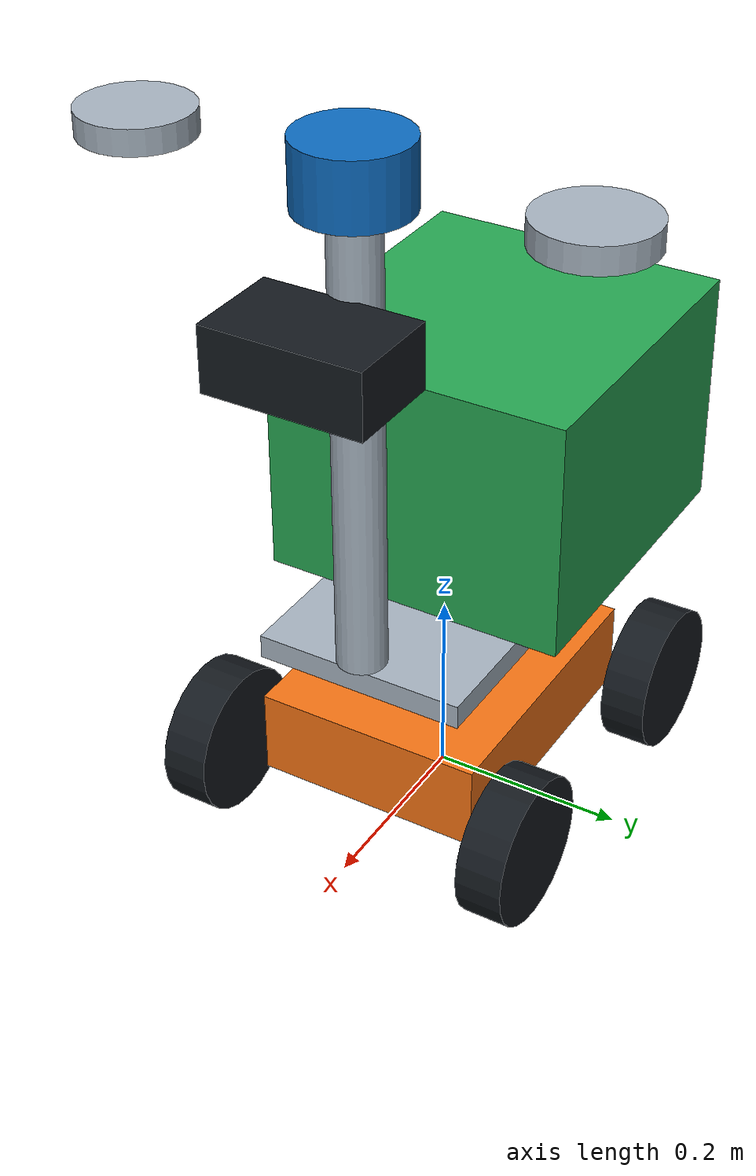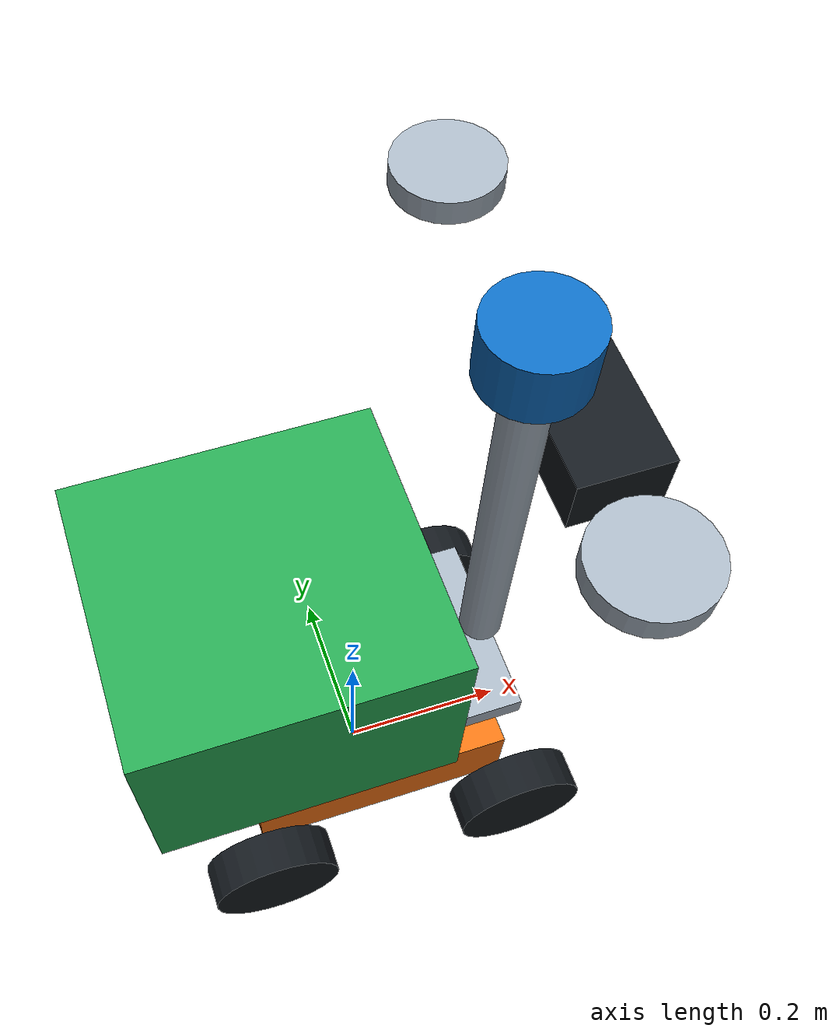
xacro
<?xml version="1.0"?>
<robot xmlns:xacro="http://www.ros.org/wiki/xacro" name="spore_patrol_robot">
  <!--
    WHEELTEC high-configuration pendulum-suspension chassis.
    Dimensions are from docs/小车相关参数/小车二维模型图纸.jpg.
    The payload and sensor mounting positions remain provisional.
  -->
  <xacro:property name="half_track" value="0.1678"/>
  <xacro:property name="half_wheelbase" value="0.15635"/>
  <xacro:property name="wheel_radius" value="0.076"/>
  <xacro:property name="wheel_width" value="0.048"/>
  <xacro:property name="chassis_length" value="0.3127"/>
  <xacro:property name="chassis_width" value="0.238"/>
  <xacro:property name="chassis_height" value="0.09"/>
  <xacro:property name="chassis_z" value="0.096"/>

  <material name="orange">
    <color rgba="0.96 0.45 0.08 1.0"/>
  </material>
  <material name="dark">
    <color rgba="0.08 0.10 0.12 1.0"/>
  </material>
  <material name="silver">
    <color rgba="0.65 0.70 0.75 1.0"/>
  </material>
  <material name="blue">
    <color rgba="0.05 0.42 0.75 1.0"/>
  </material>
  <material name="green">
    <color rgba="0.15 0.65 0.32 1.0"/>
  </material>

  <link name="base_footprint"/>

  <joint name="base_footprint_joint" type="fixed">
    <parent link="base_footprint"/>
    <child link="base_link"/>
    <origin xyz="0 0 ${chassis_z}" rpy="0 0 0"/>
  </joint>

  <link name="base_link">
    <inertial>
      <origin xyz="0 0 0"/>
      <mass value="7.6"/>
      <inertia ixx="0.12" ixy="0" ixz="0" iyy="0.17" iyz="0" izz="0.23"/>
    </inertial>
    <visual>
      <geometry>
        <box size="${chassis_length} ${chassis_width} ${chassis_height}"/>
      </geometry>
      <material name="orange"/>
    </visual>
    <collision>
      <geometry>
        <box size="${chassis_length} ${chassis_width} ${chassis_height}"/>
      </geometry>
    </collision>
  </link>

  <joint name="imu_joint" type="fixed">
    <parent link="base_link"/>
    <child link="imu_link"/>
    <origin xyz="0 0 0" rpy="0 0 0"/>
  </joint>
  <link name="imu_link"/>

  <xacro:macro name="fixed_wheel" params="name x y">
    <joint name="${name}_joint" type="fixed">
      <parent link="base_footprint"/>
      <child link="${name}_link"/>
      <origin xyz="${x} ${y} ${wheel_radius}" rpy="0 0 0"/>
    </joint>
    <link name="${name}_link">
      <visual>
        <origin rpy="${pi/2} 0 0"/>
        <geometry>
          <cylinder radius="${wheel_radius}" length="${wheel_width}"/>
        </geometry>
        <material name="dark"/>
      </visual>
      <collision>
        <origin rpy="${pi/2} 0 0"/>
        <geometry>
          <cylinder radius="${wheel_radius}" length="${wheel_width}"/>
        </geometry>
      </collision>
    </link>
  </xacro:macro>

  <xacro:fixed_wheel name="front_left_wheel" x="${half_wheelbase}" y="${half_track}"/>
  <xacro:fixed_wheel name="front_right_wheel" x="${half_wheelbase}" y="${-half_track}"/>
  <xacro:fixed_wheel name="rear_left_wheel" x="${-half_wheelbase}" y="${half_track}"/>
  <xacro:fixed_wheel name="rear_right_wheel" x="${-half_wheelbase}" y="${-half_track}"/>

  <joint name="sensor_deck_joint" type="fixed">
    <parent link="base_link"/>
    <child link="sensor_deck"/>
    <origin xyz="0 0 0.12"/>
  </joint>
  <link name="sensor_deck">
    <visual>
      <geometry>
        <box size="0.34 0.22 0.025"/>
      </geometry>
      <material name="silver"/>
    </visual>
  </link>

  <joint name="payload_joint" type="fixed">
    <parent link="sensor_deck"/>
    <child link="payload_link"/>
    <origin xyz="-0.10 0 0.15"/>
  </joint>
  <link name="payload_link">
    <visual>
      <geometry>
        <box size="0.34 0.32 0.25"/>
      </geometry>
      <material name="green"/>
    </visual>
  </link>

  <joint name="mast_joint" type="fixed">
    <parent link="sensor_deck"/>
    <child link="mast_link"/>
    <origin xyz="0.16 0 0.25"/>
  </joint>
  <link name="mast_link">
    <visual>
      <geometry>
        <cylinder radius="0.025" length="0.46"/>
      </geometry>
      <material name="silver"/>
    </visual>
  </link>

  <joint name="laser_joint" type="fixed">
    <parent link="mast_link"/>
    <child link="laser_link"/>
    <origin xyz="0 0 0.27"/>
  </joint>
  <link name="laser_link">
    <visual>
      <geometry>
        <cylinder radius="0.055" length="0.065"/>
      </geometry>
      <material name="blue"/>
    </visual>
  </link>

  <joint name="camera_joint" type="fixed">
    <parent link="mast_link"/>
    <child link="camera_link"/>
    <origin xyz="0.07 0 0.13"/>
  </joint>
  <link name="camera_link">
    <visual>
      <geometry>
        <box size="0.10 0.16 0.065"/>
      </geometry>
      <material name="dark"/>
    </visual>
  </link>

  <joint name="gnss_left_joint" type="fixed">
    <parent link="mast_link"/>
    <child link="gnss_left_link"/>
    <origin xyz="0 0.22 0.27"/>
  </joint>
  <link name="gnss_left_link">
    <visual>
      <geometry>
        <cylinder radius="0.055" length="0.025"/>
      </geometry>
      <material name="silver"/>
    </visual>
  </link>

  <joint name="gnss_right_joint" type="fixed">
    <parent link="mast_link"/>
    <child link="gnss_right_link"/>
    <origin xyz="0 -0.22 0.27"/>
  </joint>
  <link name="gnss_right_link">
    <visual>
      <geometry>
        <cylinder radius="0.055" length="0.025"/>
      </geometry>
      <material name="silver"/>
    </visual>
  </link>

  <gazebo reference="base_link">
    <material>Gazebo/Orange</material>
  </gazebo>
  <gazebo reference="sensor_deck">
    <material>Gazebo/Grey</material>
  </gazebo>
  <gazebo reference="payload_link">
    <material>Gazebo/Green</material>
  </gazebo>
  <gazebo reference="laser_link">
    <material>Gazebo/Blue</material>
    <sensor name="lidar" type="ray">
      <always_on>true</always_on>
      <visualize>false</visualize>
      <update_rate>10</update_rate>
      <ray>
        <scan>
          <horizontal>
            <samples>720</samples>
            <resolution>1</resolution>
            <min_angle>-2.35619</min_angle>
            <max_angle>2.35619</max_angle>
          </horizontal>
        </scan>
        <range>
          <min>0.10</min>
          <max>20.0</max>
          <resolution>0.01</resolution>
        </range>
        <noise>
          <type>gaussian</type>
          <mean>0.0</mean>
          <stddev>0.01</stddev>
        </noise>
      </ray>
      <plugin name="lidar_ros" filename="libgazebo_ros_ray_sensor.so">
        <ros>
          <remapping>~/out:=scan</remapping>
        </ros>
        <output_type>sensor_msgs/LaserScan</output_type>
        <frame_name>laser_link</frame_name>
      </plugin>
    </sensor>
  </gazebo>

  <!--
    This plugin provides a robust first visual demo. It is intentionally
    kinematic; a calibrated four-wheel skid-steer dynamics model will replace it.
  -->
  <gazebo>
    <plugin name="planar_drive" filename="libgazebo_ros_planar_move.so">
      <ros>
        <remapping>cmd_vel:=cmd_vel</remapping>
        <remapping>odom:=odom</remapping>
      </ros>
      <update_rate>100</update_rate>
      <publish_rate>30</publish_rate>
      <publish_odom>true</publish_odom>
      <publish_odom_tf>true</publish_odom_tf>
      <odometry_frame>odom</odometry_frame>
      <robot_base_frame>base_footprint</robot_base_frame>
      <covariance_x>0.001</covariance_x>
      <covariance_y>0.001</covariance_y>
      <covariance_yaw>0.01</covariance_yaw>
    </plugin>
  </gazebo>
</robot>
